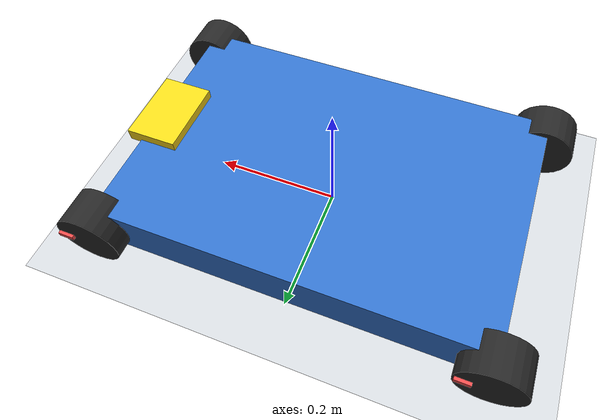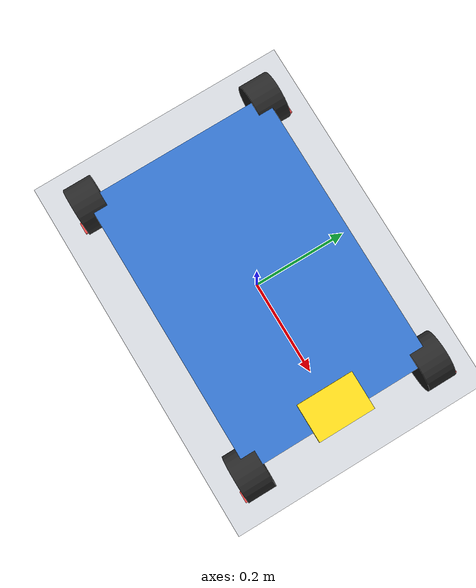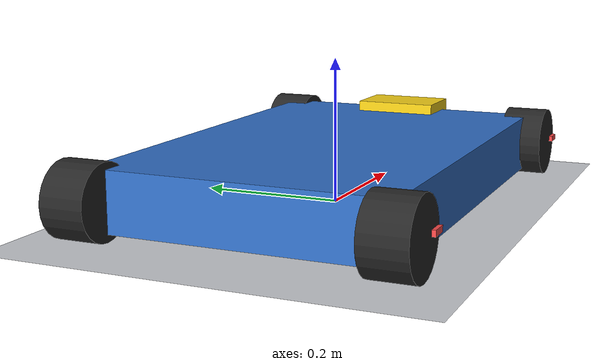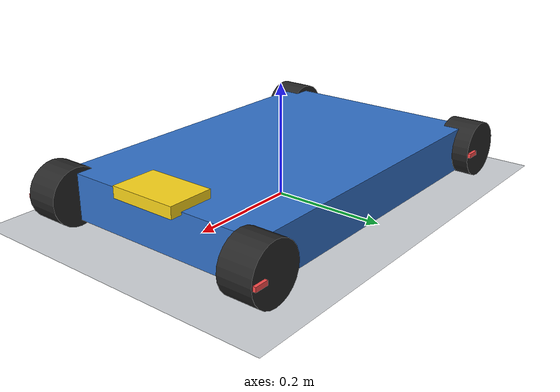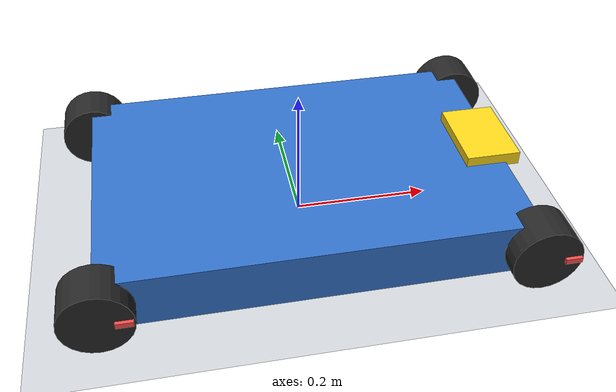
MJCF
<mujoco model="mecanum_base">
  <option gravity="0 0 0" timestep="0.01"/>

  <visual>
    <global offwidth="1000" offheight="760"/>
    <headlight ambient="0.45 0.45 0.45" diffuse="0.6 0.6 0.6"/>
    <scale framelength="0.5" framewidth="0.02"/>
  </visual>

  <asset>
    <texture name="grid" type="2d" builtin="checker" rgb1="0.9 0.9 0.9" rgb2="0.75 0.78 0.82"
             width="300" height="300"/>
    <material name="grid" texture="grid" texrepeat="16 16" reflectance="0.1"/>
  </asset>

  <worldbody>
    <light pos="1 -1 2.5" dir="-0.3 0.3 -1"/>
    <geom name="floor" type="plane" size="6 6 0.1" material="grid"/>

    <!-- world/space frame {s} at the origin -->
    <site name="world" pos="0 0 0.001" size="0.02" rgba="1 1 1 0.4"/>

    <!-- ===================== GROUND-TRUTH BASE ===================== -->
    <body name="root" pos="0 0 0.05">
      <freejoint name="root"/>
      <site name="b" pos="0 0 0" size="0.02" rgba="1 1 1 0.6"/>
      <!-- chassis -->
      <geom type="box" size="0.30 0.20 0.04" rgba="0.20 0.45 0.80 1"/>
      <!-- forward (+x) marker so heading is visible -->
      <geom type="box" pos="0.28 0 0.045" size="0.04 0.06 0.01" rgba="1 0.85 0.1 1"/>

      <!-- four mecanum wheels: spin about body-y axle; positions (+-L, +-W) -->
      <body name="w1" pos="0.30 0.20 0">
        <joint name="w1" type="hinge" axis="0 1 0"/>
        <geom type="cylinder" fromto="0 -0.03 0 0 0.03 0" size="0.05" rgba="0.15 0.15 0.15 1"/>
        <geom type="box" pos="0.035 0.031 0" size="0.012 0.004 0.004" rgba="1 0.3 0.3 1"/>
      </body>
      <body name="w2" pos="0.30 -0.20 0">
        <joint name="w2" type="hinge" axis="0 1 0"/>
        <geom type="cylinder" fromto="0 -0.03 0 0 0.03 0" size="0.05" rgba="0.15 0.15 0.15 1"/>
        <geom type="box" pos="0.035 -0.031 0" size="0.012 0.004 0.004" rgba="1 0.3 0.3 1"/>
      </body>
      <body name="w3" pos="-0.30 0.20 0">
        <joint name="w3" type="hinge" axis="0 1 0"/>
        <geom type="cylinder" fromto="0 -0.03 0 0 0.03 0" size="0.05" rgba="0.15 0.15 0.15 1"/>
        <geom type="box" pos="0.035 0.031 0" size="0.012 0.004 0.004" rgba="1 0.3 0.3 1"/>
      </body>
      <body name="w4" pos="-0.30 -0.20 0">
        <joint name="w4" type="hinge" axis="0 1 0"/>
        <geom type="cylinder" fromto="0 -0.03 0 0 0.03 0" size="0.05" rgba="0.15 0.15 0.15 1"/>
        <geom type="box" pos="0.035 -0.031 0" size="0.012 0.004 0.004" rgba="1 0.3 0.3 1"/>
      </body>
    </body>

    <!-- ===================== ODOMETRY ESTIMATE (ghost) ===================== -->
    <body name="ghost" pos="0 0 0.05">
      <freejoint name="ghost"/>
      <site name="be" pos="0 0 0" size="0.02" rgba="1 0.6 0.1 0.7"/>
      <geom type="box" size="0.30 0.20 0.04" rgba="0.95 0.55 0.10 0.35" contype="0" conaffinity="0"/>
      <geom type="box" pos="0.28 0 0.045" size="0.04 0.06 0.01" rgba="1 0.85 0.1 0.4" contype="0" conaffinity="0"/>
    </body>
  </worldbody>
</mujoco>
